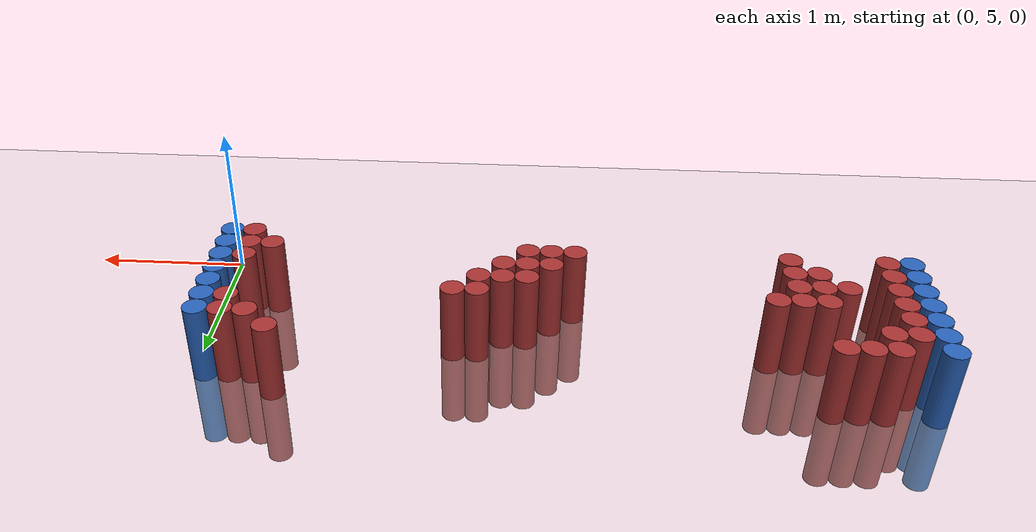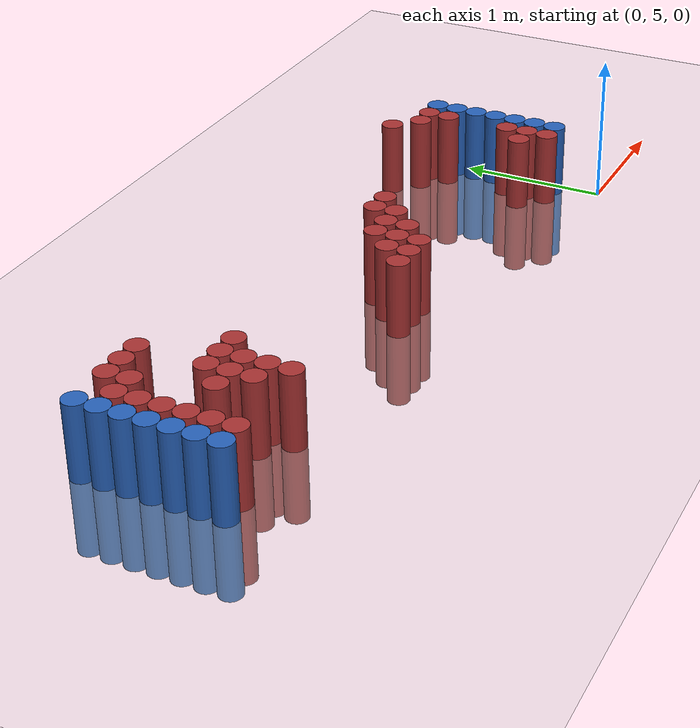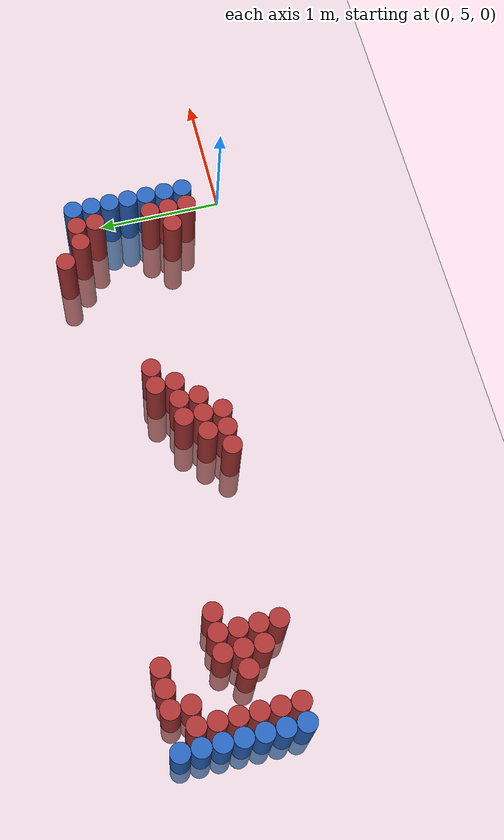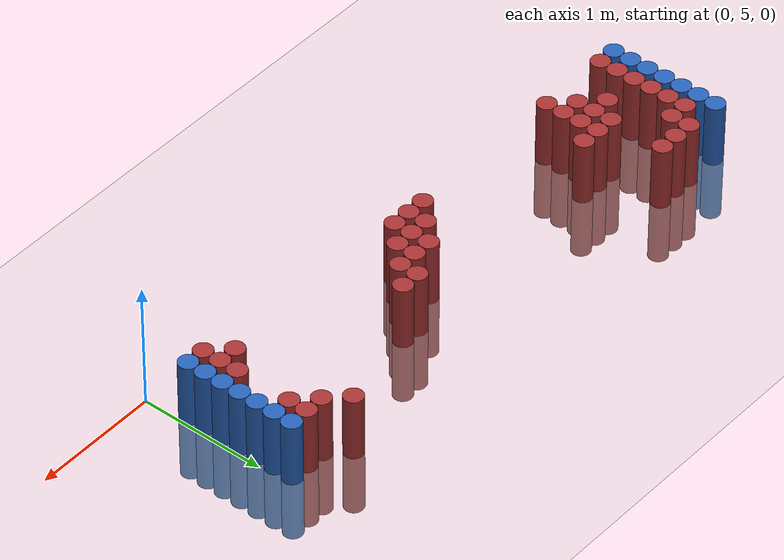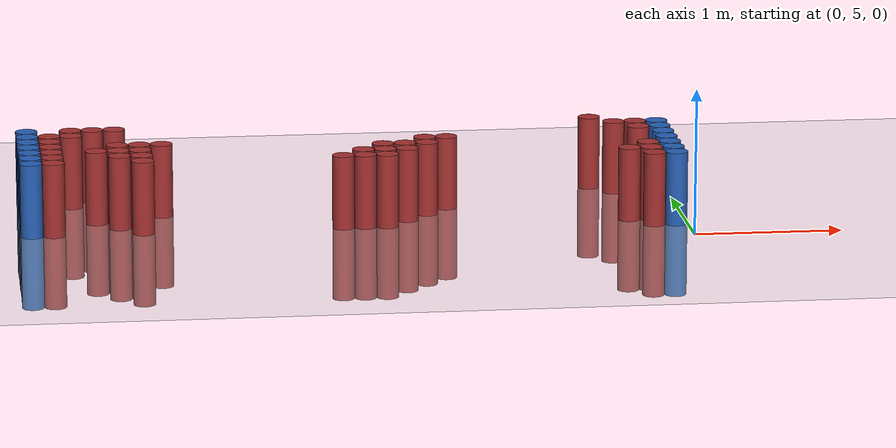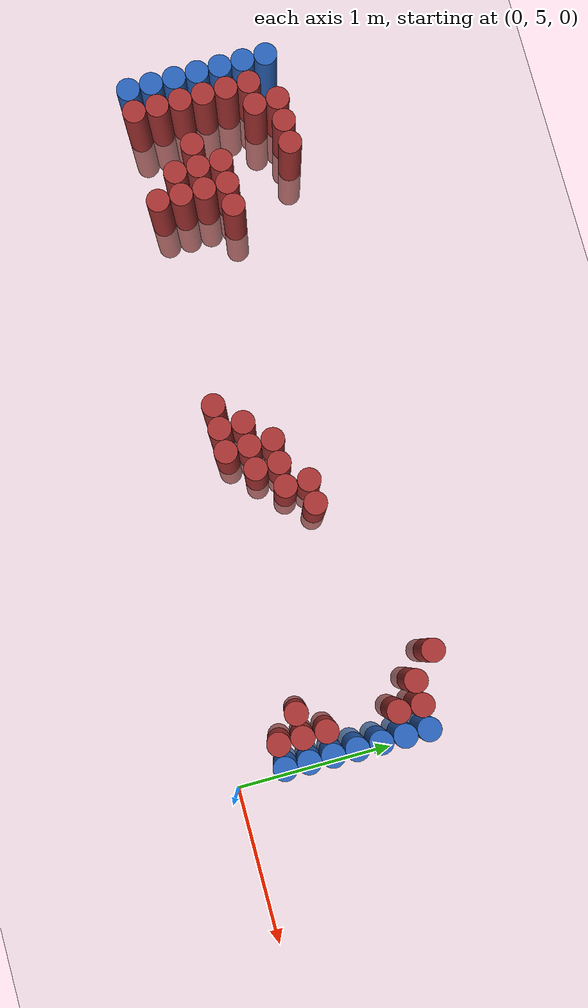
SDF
<sdf version="1.6">
 <world name="default">
  <model name="ground_plane">
   <static>1</static>
   <link name="link">
    <collision name="collision">
     <geometry><plane><normal>0 0 1</normal><size>100 100</size></plane></geometry>
     <surface><friction><ode><mu>100</mu><mu2>50</mu2></ode></friction></surface>
    </collision>
    <visual name="visual">
     <cast_shadows>0</cast_shadows>
     <geometry><plane><normal>0 0 1</normal><size>100 100</size></plane></geometry>
     <material>
      <script><uri>file://media/materials/scripts/gazebo.material</uri><name>Gazebo/Grey</name></script>
     </material>
    </visual>
   </link>
  </model>
  <model name="unit_cylinder_98">
   <static>1</static>
   <pose>-4.425000 5.475000 0.000000 0.000000 0.000000 0.000000</pose>
   <link name="link">
    <inertial>
     <mass>1</mass>
     <inertia><ixx>0.145833</ixx><ixy>0</ixy><ixz>0</ixz><iyy>0.145833</iyy><iyz>0</iyz><izz>0.125</izz></inertia>
    </inertial>
    <collision name="collision">
     <geometry><cylinder><radius>0.075000</radius><length>1</length></cylinder></geometry>
    </collision>
    <visual name="visual">
     <geometry><cylinder><radius>0.075000</radius><length>1</length></cylinder></geometry>
     <material>
      <ambient>0.152000 0.379000 0.720000 1</ambient>
      <diffuse>0.152000 0.379000 0.720000 1</diffuse>
     </material>
     <material>
      <script><name>Gazebo/Grey</name><uri>file://media/materials/scripts/gazebo.material</uri></script>
     </material>
    </visual>
   </link>
  </model>
  <model name="unit_cylinder_99">
   <static>1</static>
   <pose>-4.425000 5.625000 0.000000 0.000000 0.000000 0.000000</pose>
   <link name="link">
    <inertial>
     <mass>1</mass>
     <inertia><ixx>0.145833</ixx><ixy>0</ixy><ixz>0</ixz><iyy>0.145833</iyy><iyz>0</iyz><izz>0.125</izz></inertia>
    </inertial>
    <collision name="collision">
     <geometry><cylinder><radius>0.075000</radius><length>1</length></cylinder></geometry>
    </collision>
    <visual name="visual">
     <geometry><cylinder><radius>0.075000</radius><length>1</length></cylinder></geometry>
     <material>
      <ambient>0.152000 0.379000 0.720000 1</ambient>
      <diffuse>0.152000 0.379000 0.720000 1</diffuse>
     </material>
     <material>
      <script><name>Gazebo/Grey</name><uri>file://media/materials/scripts/gazebo.material</uri></script>
     </material>
    </visual>
   </link>
  </model>
  <model name="unit_cylinder_100">
   <static>1</static>
   <pose>-4.425000 5.775000 0.000000 0.000000 0.000000 0.000000</pose>
   <link name="link">
    <inertial>
     <mass>1</mass>
     <inertia><ixx>0.145833</ixx><ixy>0</ixy><ixz>0</ixz><iyy>0.145833</iyy><iyz>0</iyz><izz>0.125</izz></inertia>
    </inertial>
    <collision name="collision">
     <geometry><cylinder><radius>0.075000</radius><length>1</length></cylinder></geometry>
    </collision>
    <visual name="visual">
     <geometry><cylinder><radius>0.075000</radius><length>1</length></cylinder></geometry>
     <material>
      <ambient>0.152000 0.379000 0.720000 1</ambient>
      <diffuse>0.152000 0.379000 0.720000 1</diffuse>
     </material>
     <material>
      <script><name>Gazebo/Grey</name><uri>file://media/materials/scripts/gazebo.material</uri></script>
     </material>
    </visual>
   </link>
  </model>
  <model name="unit_cylinder_101">
   <static>1</static>
   <pose>-4.425000 5.925000 0.000000 0.000000 0.000000 0.000000</pose>
   <link name="link">
    <inertial>
     <mass>1</mass>
     <inertia><ixx>0.145833</ixx><ixy>0</ixy><ixz>0</ixz><iyy>0.145833</iyy><iyz>0</iyz><izz>0.125</izz></inertia>
    </inertial>
    <collision name="collision">
     <geometry><cylinder><radius>0.075000</radius><length>1</length></cylinder></geometry>
    </collision>
    <visual name="visual">
     <geometry><cylinder><radius>0.075000</radius><length>1</length></cylinder></geometry>
     <material>
      <ambient>0.152000 0.379000 0.720000 1</ambient>
      <diffuse>0.152000 0.379000 0.720000 1</diffuse>
     </material>
     <material>
      <script><name>Gazebo/Grey</name><uri>file://media/materials/scripts/gazebo.material</uri></script>
     </material>
    </visual>
   </link>
  </model>
  <model name="unit_cylinder_102">
   <static>1</static>
   <pose>-4.425000 6.075000 0.000000 0.000000 0.000000 0.000000</pose>
   <link name="link">
    <inertial>
     <mass>1</mass>
     <inertia><ixx>0.145833</ixx><ixy>0</ixy><ixz>0</ixz><iyy>0.145833</iyy><iyz>0</iyz><izz>0.125</izz></inertia>
    </inertial>
    <collision name="collision">
     <geometry><cylinder><radius>0.075000</radius><length>1</length></cylinder></geometry>
    </collision>
    <visual name="visual">
     <geometry><cylinder><radius>0.075000</radius><length>1</length></cylinder></geometry>
     <material>
      <ambient>0.152000 0.379000 0.720000 1</ambient>
      <diffuse>0.152000 0.379000 0.720000 1</diffuse>
     </material>
     <material>
      <script><name>Gazebo/Grey</name><uri>file://media/materials/scripts/gazebo.material</uri></script>
     </material>
    </visual>
   </link>
  </model>
  <model name="unit_cylinder_103">
   <static>1</static>
   <pose>-4.425000 6.225000 0.000000 0.000000 0.000000 0.000000</pose>
   <link name="link">
    <inertial>
     <mass>1</mass>
     <inertia><ixx>0.145833</ixx><ixy>0</ixy><ixz>0</ixz><iyy>0.145833</iyy><iyz>0</iyz><izz>0.125</izz></inertia>
    </inertial>
    <collision name="collision">
     <geometry><cylinder><radius>0.075000</radius><length>1</length></cylinder></geometry>
    </collision>
    <visual name="visual">
     <geometry><cylinder><radius>0.075000</radius><length>1</length></cylinder></geometry>
     <material>
      <ambient>0.152000 0.379000 0.720000 1</ambient>
      <diffuse>0.152000 0.379000 0.720000 1</diffuse>
     </material>
     <material>
      <script><name>Gazebo/Grey</name><uri>file://media/materials/scripts/gazebo.material</uri></script>
     </material>
    </visual>
   </link>
  </model>
  <model name="unit_cylinder_104">
   <static>1</static>
   <pose>-4.425000 6.375000 0.000000 0.000000 0.000000 0.000000</pose>
   <link name="link">
    <inertial>
     <mass>1</mass>
     <inertia><ixx>0.145833</ixx><ixy>0</ixy><ixz>0</ixz><iyy>0.145833</iyy><iyz>0</iyz><izz>0.125</izz></inertia>
    </inertial>
    <collision name="collision">
     <geometry><cylinder><radius>0.075000</radius><length>1</length></cylinder></geometry>
    </collision>
    <visual name="visual">
     <geometry><cylinder><radius>0.075000</radius><length>1</length></cylinder></geometry>
     <material>
      <ambient>0.152000 0.379000 0.720000 1</ambient>
      <diffuse>0.152000 0.379000 0.720000 1</diffuse>
     </material>
     <material>
      <script><name>Gazebo/Grey</name><uri>file://media/materials/scripts/gazebo.material</uri></script>
     </material>
    </visual>
   </link>
  </model>
  <model name="unit_cylinder_128">
   <static>1</static>
   <pose>-4.275000 5.475000 0.000000 0.000000 0.000000 0.000000</pose>
   <link name="link">
    <inertial>
     <mass>1</mass>
     <inertia><ixx>0.145833</ixx><ixy>0</ixy><ixz>0</ixz><iyy>0.145833</iyy><iyz>0</iyz><izz>0.125</izz></inertia>
    </inertial>
    <collision name="collision">
     <geometry><cylinder><radius>0.075000</radius><length>1</length></cylinder></geometry>
    </collision>
    <visual name="visual">
     <geometry><cylinder><radius>0.075000</radius><length>1</length></cylinder></geometry>
     <material>
      <ambient>0.648000 0.192000 0.192000 1</ambient>
      <diffuse>0.648000 0.192000 0.192000 1</diffuse>
     </material>
     <material>
      <script><name>Gazebo/Grey</name><uri>file://media/materials/scripts/gazebo.material</uri></script>
     </material>
    </visual>
   </link>
  </model>
  <model name="unit_cylinder_129">
   <static>1</static>
   <pose>-4.275000 5.625000 0.000000 0.000000 0.000000 0.000000</pose>
   <link name="link">
    <inertial>
     <mass>1</mass>
     <inertia><ixx>0.145833</ixx><ixy>0</ixy><ixz>0</ixz><iyy>0.145833</iyy><iyz>0</iyz><izz>0.125</izz></inertia>
    </inertial>
    <collision name="collision">
     <geometry><cylinder><radius>0.075000</radius><length>1</length></cylinder></geometry>
    </collision>
    <visual name="visual">
     <geometry><cylinder><radius>0.075000</radius><length>1</length></cylinder></geometry>
     <material>
      <ambient>0.648000 0.192000 0.192000 1</ambient>
      <diffuse>0.648000 0.192000 0.192000 1</diffuse>
     </material>
     <material>
      <script><name>Gazebo/Grey</name><uri>file://media/materials/scripts/gazebo.material</uri></script>
     </material>
    </visual>
   </link>
  </model>
  <model name="unit_cylinder_130">
   <static>1</static>
   <pose>-4.275000 5.775000 0.000000 0.000000 0.000000 0.000000</pose>
   <link name="link">
    <inertial>
     <mass>1</mass>
     <inertia><ixx>0.145833</ixx><ixy>0</ixy><ixz>0</ixz><iyy>0.145833</iyy><iyz>0</iyz><izz>0.125</izz></inertia>
    </inertial>
    <collision name="collision">
     <geometry><cylinder><radius>0.075000</radius><length>1</length></cylinder></geometry>
    </collision>
    <visual name="visual">
     <geometry><cylinder><radius>0.075000</radius><length>1</length></cylinder></geometry>
     <material>
      <ambient>0.648000 0.192000 0.192000 1</ambient>
      <diffuse>0.648000 0.192000 0.192000 1</diffuse>
     </material>
     <material>
      <script><name>Gazebo/Grey</name><uri>file://media/materials/scripts/gazebo.material</uri></script>
     </material>
    </visual>
   </link>
  </model>
  <model name="unit_cylinder_131">
   <static>1</static>
   <pose>-4.275000 5.925000 0.000000 0.000000 0.000000 0.000000</pose>
   <link name="link">
    <inertial>
     <mass>1</mass>
     <inertia><ixx>0.145833</ixx><ixy>0</ixy><ixz>0</ixz><iyy>0.145833</iyy><iyz>0</iyz><izz>0.125</izz></inertia>
    </inertial>
    <collision name="collision">
     <geometry><cylinder><radius>0.075000</radius><length>1</length></cylinder></geometry>
    </collision>
    <visual name="visual">
     <geometry><cylinder><radius>0.075000</radius><length>1</length></cylinder></geometry>
     <material>
      <ambient>0.648000 0.192000 0.192000 1</ambient>
      <diffuse>0.648000 0.192000 0.192000 1</diffuse>
     </material>
     <material>
      <script><name>Gazebo/Grey</name><uri>file://media/materials/scripts/gazebo.material</uri></script>
     </material>
    </visual>
   </link>
  </model>
  <model name="unit_cylinder_132">
   <static>1</static>
   <pose>-4.275000 6.075000 0.000000 0.000000 0.000000 0.000000</pose>
   <link name="link">
    <inertial>
     <mass>1</mass>
     <inertia><ixx>0.145833</ixx><ixy>0</ixy><ixz>0</ixz><iyy>0.145833</iyy><iyz>0</iyz><izz>0.125</izz></inertia>
    </inertial>
    <collision name="collision">
     <geometry><cylinder><radius>0.075000</radius><length>1</length></cylinder></geometry>
    </collision>
    <visual name="visual">
     <geometry><cylinder><radius>0.075000</radius><length>1</length></cylinder></geometry>
     <material>
      <ambient>0.648000 0.192000 0.192000 1</ambient>
      <diffuse>0.648000 0.192000 0.192000 1</diffuse>
     </material>
     <material>
      <script><name>Gazebo/Grey</name><uri>file://media/materials/scripts/gazebo.material</uri></script>
     </material>
    </visual>
   </link>
  </model>
  <model name="unit_cylinder_133">
   <static>1</static>
   <pose>-4.275000 6.225000 0.000000 0.000000 0.000000 0.000000</pose>
   <link name="link">
    <inertial>
     <mass>1</mass>
     <inertia><ixx>0.145833</ixx><ixy>0</ixy><ixz>0</ixz><iyy>0.145833</iyy><iyz>0</iyz><izz>0.125</izz></inertia>
    </inertial>
    <collision name="collision">
     <geometry><cylinder><radius>0.075000</radius><length>1</length></cylinder></geometry>
    </collision>
    <visual name="visual">
     <geometry><cylinder><radius>0.075000</radius><length>1</length></cylinder></geometry>
     <material>
      <ambient>0.648000 0.192000 0.192000 1</ambient>
      <diffuse>0.648000 0.192000 0.192000 1</diffuse>
     </material>
     <material>
      <script><name>Gazebo/Grey</name><uri>file://media/materials/scripts/gazebo.material</uri></script>
     </material>
    </visual>
   </link>
  </model>
  <model name="unit_cylinder_144">
   <static>1</static>
   <pose>-4.125000 6.225000 0.000000 0.000000 0.000000 0.000000</pose>
   <link name="link">
    <inertial>
     <mass>1</mass>
     <inertia><ixx>0.145833</ixx><ixy>0</ixy><ixz>0</ixz><iyy>0.145833</iyy><iyz>0</iyz><izz>0.125</izz></inertia>
    </inertial>
    <collision name="collision">
     <geometry><cylinder><radius>0.075000</radius><length>1</length></cylinder></geometry>
    </collision>
    <visual name="visual">
     <geometry><cylinder><radius>0.075000</radius><length>1</length></cylinder></geometry>
     <material>
      <ambient>0.648000 0.192000 0.192000 1</ambient>
      <diffuse>0.648000 0.192000 0.192000 1</diffuse>
     </material>
     <material>
      <script><name>Gazebo/Grey</name><uri>file://media/materials/scripts/gazebo.material</uri></script>
     </material>
    </visual>
   </link>
  </model>
  <model name="unit_cylinder_145">
   <static>1</static>
   <pose>-4.125000 6.375000 0.000000 0.000000 0.000000 0.000000</pose>
   <link name="link">
    <inertial>
     <mass>1</mass>
     <inertia><ixx>0.145833</ixx><ixy>0</ixy><ixz>0</ixz><iyy>0.145833</iyy><iyz>0</iyz><izz>0.125</izz></inertia>
    </inertial>
    <collision name="collision">
     <geometry><cylinder><radius>0.075000</radius><length>1</length></cylinder></geometry>
    </collision>
    <visual name="visual">
     <geometry><cylinder><radius>0.075000</radius><length>1</length></cylinder></geometry>
     <material>
      <ambient>0.648000 0.192000 0.192000 1</ambient>
      <diffuse>0.648000 0.192000 0.192000 1</diffuse>
     </material>
     <material>
      <script><name>Gazebo/Grey</name><uri>file://media/materials/scripts/gazebo.material</uri></script>
     </material>
    </visual>
   </link>
  </model>
  <model name="unit_cylinder_151">
   <static>1</static>
   <pose>-3.975000 5.775000 0.000000 0.000000 0.000000 0.000000</pose>
   <link name="link">
    <inertial>
     <mass>1</mass>
     <inertia><ixx>0.145833</ixx><ixy>0</ixy><ixz>0</ixz><iyy>0.145833</iyy><iyz>0</iyz><izz>0.125</izz></inertia>
    </inertial>
    <collision name="collision">
     <geometry><cylinder><radius>0.075000</radius><length>1</length></cylinder></geometry>
    </collision>
    <visual name="visual">
     <geometry><cylinder><radius>0.075000</radius><length>1</length></cylinder></geometry>
     <material>
      <ambient>0.648000 0.192000 0.192000 1</ambient>
      <diffuse>0.648000 0.192000 0.192000 1</diffuse>
     </material>
     <material>
      <script><name>Gazebo/Grey</name><uri>file://media/materials/scripts/gazebo.material</uri></script>
     </material>
    </visual>
   </link>
  </model>
  <model name="unit_cylinder_152">
   <static>1</static>
   <pose>-3.975000 6.375000 0.000000 0.000000 0.000000 0.000000</pose>
   <link name="link">
    <inertial>
     <mass>1</mass>
     <inertia><ixx>0.145833</ixx><ixy>0</ixy><ixz>0</ixz><iyy>0.145833</iyy><iyz>0</iyz><izz>0.125</izz></inertia>
    </inertial>
    <collision name="collision">
     <geometry><cylinder><radius>0.075000</radius><length>1</length></cylinder></geometry>
    </collision>
    <visual name="visual">
     <geometry><cylinder><radius>0.075000</radius><length>1</length></cylinder></geometry>
     <material>
      <ambient>0.648000 0.192000 0.192000 1</ambient>
      <diffuse>0.648000 0.192000 0.192000 1</diffuse>
     </material>
     <material>
      <script><name>Gazebo/Grey</name><uri>file://media/materials/scripts/gazebo.material</uri></script>
     </material>
    </visual>
   </link>
  </model>
  <model name="unit_cylinder_156">
   <static>1</static>
   <pose>-3.825000 5.625000 0.000000 0.000000 0.000000 0.000000</pose>
   <link name="link">
    <inertial>
     <mass>1</mass>
     <inertia><ixx>0.145833</ixx><ixy>0</ixy><ixz>0</ixz><iyy>0.145833</iyy><iyz>0</iyz><izz>0.125</izz></inertia>
    </inertial>
    <collision name="collision">
     <geometry><cylinder><radius>0.075000</radius><length>1</length></cylinder></geometry>
    </collision>
    <visual name="visual">
     <geometry><cylinder><radius>0.075000</radius><length>1</length></cylinder></geometry>
     <material>
      <ambient>0.648000 0.192000 0.192000 1</ambient>
      <diffuse>0.648000 0.192000 0.192000 1</diffuse>
     </material>
     <material>
      <script><name>Gazebo/Grey</name><uri>file://media/materials/scripts/gazebo.material</uri></script>
     </material>
    </visual>
   </link>
  </model>
  <model name="unit_cylinder_157">
   <static>1</static>
   <pose>-3.825000 5.775000 0.000000 0.000000 0.000000 0.000000</pose>
   <link name="link">
    <inertial>
     <mass>1</mass>
     <inertia><ixx>0.145833</ixx><ixy>0</ixy><ixz>0</ixz><iyy>0.145833</iyy><iyz>0</iyz><izz>0.125</izz></inertia>
    </inertial>
    <collision name="collision">
     <geometry><cylinder><radius>0.075000</radius><length>1</length></cylinder></geometry>
    </collision>
    <visual name="visual">
     <geometry><cylinder><radius>0.075000</radius><length>1</length></cylinder></geometry>
     <material>
      <ambient>0.648000 0.192000 0.192000 1</ambient>
      <diffuse>0.648000 0.192000 0.192000 1</diffuse>
     </material>
     <material>
      <script><name>Gazebo/Grey</name><uri>file://media/materials/scripts/gazebo.material</uri></script>
     </material>
    </visual>
   </link>
  </model>
  <model name="unit_cylinder_158">
   <static>1</static>
   <pose>-3.825000 5.925000 0.000000 0.000000 0.000000 0.000000</pose>
   <link name="link">
    <inertial>
     <mass>1</mass>
     <inertia><ixx>0.145833</ixx><ixy>0</ixy><ixz>0</ixz><iyy>0.145833</iyy><iyz>0</iyz><izz>0.125</izz></inertia>
    </inertial>
    <collision name="collision">
     <geometry><cylinder><radius>0.075000</radius><length>1</length></cylinder></geometry>
    </collision>
    <visual name="visual">
     <geometry><cylinder><radius>0.075000</radius><length>1</length></cylinder></geometry>
     <material>
      <ambient>0.648000 0.192000 0.192000 1</ambient>
      <diffuse>0.648000 0.192000 0.192000 1</diffuse>
     </material>
     <material>
      <script><name>Gazebo/Grey</name><uri>file://media/materials/scripts/gazebo.material</uri></script>
     </material>
    </visual>
   </link>
  </model>
  <model name="unit_cylinder_159">
   <static>1</static>
   <pose>-3.825000 6.375000 0.000000 0.000000 0.000000 0.000000</pose>
   <link name="link">
    <inertial>
     <mass>1</mass>
     <inertia><ixx>0.145833</ixx><ixy>0</ixy><ixz>0</ixz><iyy>0.145833</iyy><iyz>0</iyz><izz>0.125</izz></inertia>
    </inertial>
    <collision name="collision">
     <geometry><cylinder><radius>0.075000</radius><length>1</length></cylinder></geometry>
    </collision>
    <visual name="visual">
     <geometry><cylinder><radius>0.075000</radius><length>1</length></cylinder></geometry>
     <material>
      <ambient>0.648000 0.192000 0.192000 1</ambient>
      <diffuse>0.648000 0.192000 0.192000 1</diffuse>
     </material>
     <material>
      <script><name>Gazebo/Grey</name><uri>file://media/materials/scripts/gazebo.material</uri></script>
     </material>
    </visual>
   </link>
  </model>
  <model name="unit_cylinder_164">
   <static>1</static>
   <pose>-3.675000 5.475000 0.000000 0.000000 0.000000 0.000000</pose>
   <link name="link">
    <inertial>
     <mass>1</mass>
     <inertia><ixx>0.145833</ixx><ixy>0</ixy><ixz>0</ixz><iyy>0.145833</iyy><iyz>0</iyz><izz>0.125</izz></inertia>
    </inertial>
    <collision name="collision">
     <geometry><cylinder><radius>0.075000</radius><length>1</length></cylinder></geometry>
    </collision>
    <visual name="visual">
     <geometry><cylinder><radius>0.075000</radius><length>1</length></cylinder></geometry>
     <material>
      <ambient>0.648000 0.192000 0.192000 1</ambient>
      <diffuse>0.648000 0.192000 0.192000 1</diffuse>
     </material>
     <material>
      <script><name>Gazebo/Grey</name><uri>file://media/materials/scripts/gazebo.material</uri></script>
     </material>
    </visual>
   </link>
  </model>
  <model name="unit_cylinder_165">
   <static>1</static>
   <pose>-3.675000 5.625000 0.000000 0.000000 0.000000 0.000000</pose>
   <link name="link">
    <inertial>
     <mass>1</mass>
     <inertia><ixx>0.145833</ixx><ixy>0</ixy><ixz>0</ixz><iyy>0.145833</iyy><iyz>0</iyz><izz>0.125</izz></inertia>
    </inertial>
    <collision name="collision">
     <geometry><cylinder><radius>0.075000</radius><length>1</length></cylinder></geometry>
    </collision>
    <visual name="visual">
     <geometry><cylinder><radius>0.075000</radius><length>1</length></cylinder></geometry>
     <material>
      <ambient>0.648000 0.192000 0.192000 1</ambient>
      <diffuse>0.648000 0.192000 0.192000 1</diffuse>
     </material>
     <material>
      <script><name>Gazebo/Grey</name><uri>file://media/materials/scripts/gazebo.material</uri></script>
     </material>
    </visual>
   </link>
  </model>
  <model name="unit_cylinder_166">
   <static>1</static>
   <pose>-3.675000 5.775000 0.000000 0.000000 0.000000 0.000000</pose>
   <link name="link">
    <inertial>
     <mass>1</mass>
     <inertia><ixx>0.145833</ixx><ixy>0</ixy><ixz>0</ixz><iyy>0.145833</iyy><iyz>0</iyz><izz>0.125</izz></inertia>
    </inertial>
    <collision name="collision">
     <geometry><cylinder><radius>0.075000</radius><length>1</length></cylinder></geometry>
    </collision>
    <visual name="visual">
     <geometry><cylinder><radius>0.075000</radius><length>1</length></cylinder></geometry>
     <material>
      <ambient>0.648000 0.192000 0.192000 1</ambient>
      <diffuse>0.648000 0.192000 0.192000 1</diffuse>
     </material>
     <material>
      <script><name>Gazebo/Grey</name><uri>file://media/materials/scripts/gazebo.material</uri></script>
     </material>
    </visual>
   </link>
  </model>
  <model name="unit_cylinder_167">
   <static>1</static>
   <pose>-3.675000 5.925000 0.000000 0.000000 0.000000 0.000000</pose>
   <link name="link">
    <inertial>
     <mass>1</mass>
     <inertia><ixx>0.145833</ixx><ixy>0</ixy><ixz>0</ixz><iyy>0.145833</iyy><iyz>0</iyz><izz>0.125</izz></inertia>
    </inertial>
    <collision name="collision">
     <geometry><cylinder><radius>0.075000</radius><length>1</length></cylinder></geometry>
    </collision>
    <visual name="visual">
     <geometry><cylinder><radius>0.075000</radius><length>1</length></cylinder></geometry>
     <material>
      <ambient>0.648000 0.192000 0.192000 1</ambient>
      <diffuse>0.648000 0.192000 0.192000 1</diffuse>
     </material>
     <material>
      <script><name>Gazebo/Grey</name><uri>file://media/materials/scripts/gazebo.material</uri></script>
     </material>
    </visual>
   </link>
  </model>
  <model name="unit_cylinder_171">
   <static>1</static>
   <pose>-3.525000 5.925000 0.000000 0.000000 0.000000 0.000000</pose>
   <link name="link">
    <inertial>
     <mass>1</mass>
     <inertia><ixx>0.145833</ixx><ixy>0</ixy><ixz>0</ixz><iyy>0.145833</iyy><iyz>0</iyz><izz>0.125</izz></inertia>
    </inertial>
    <collision name="collision">
     <geometry><cylinder><radius>0.075000</radius><length>1</length></cylinder></geometry>
    </collision>
    <visual name="visual">
     <geometry><cylinder><radius>0.075000</radius><length>1</length></cylinder></geometry>
     <material>
      <ambient>0.648000 0.192000 0.192000 1</ambient>
      <diffuse>0.648000 0.192000 0.192000 1</diffuse>
     </material>
     <material>
      <script><name>Gazebo/Grey</name><uri>file://media/materials/scripts/gazebo.material</uri></script>
     </material>
    </visual>
   </link>
  </model>
  <model name="unit_cylinder_199">
   <static>1</static>
   <pose>-2.325000 5.475000 0.000000 0.000000 0.000000 0.000000</pose>
   <link name="link">
    <inertial>
     <mass>1</mass>
     <inertia><ixx>0.145833</ixx><ixy>0</ixy><ixz>0</ixz><iyy>0.145833</iyy><iyz>0</iyz><izz>0.125</izz></inertia>
    </inertial>
    <collision name="collision">
     <geometry><cylinder><radius>0.075000</radius><length>1</length></cylinder></geometry>
    </collision>
    <visual name="visual">
     <geometry><cylinder><radius>0.075000</radius><length>1</length></cylinder></geometry>
     <material>
      <ambient>0.648000 0.192000 0.192000 1</ambient>
      <diffuse>0.648000 0.192000 0.192000 1</diffuse>
     </material>
     <material>
      <script><name>Gazebo/Grey</name><uri>file://media/materials/scripts/gazebo.material</uri></script>
     </material>
    </visual>
   </link>
  </model>
  <model name="unit_cylinder_204">
   <static>1</static>
   <pose>-2.175000 5.475000 0.000000 0.000000 0.000000 0.000000</pose>
   <link name="link">
    <inertial>
     <mass>1</mass>
     <inertia><ixx>0.145833</ixx><ixy>0</ixy><ixz>0</ixz><iyy>0.145833</iyy><iyz>0</iyz><izz>0.125</izz></inertia>
    </inertial>
    <collision name="collision">
     <geometry><cylinder><radius>0.075000</radius><length>1</length></cylinder></geometry>
    </collision>
    <visual name="visual">
     <geometry><cylinder><radius>0.075000</radius><length>1</length></cylinder></geometry>
     <material>
      <ambient>0.648000 0.192000 0.192000 1</ambient>
      <diffuse>0.648000 0.192000 0.192000 1</diffuse>
     </material>
     <material>
      <script><name>Gazebo/Grey</name><uri>file://media/materials/scripts/gazebo.material</uri></script>
     </material>
    </visual>
   </link>
  </model>
  <model name="unit_cylinder_205">
   <static>1</static>
   <pose>-2.175000 5.625000 0.000000 0.000000 0.000000 0.000000</pose>
   <link name="link">
    <inertial>
     <mass>1</mass>
     <inertia><ixx>0.145833</ixx><ixy>0</ixy><ixz>0</ixz><iyy>0.145833</iyy><iyz>0</iyz><izz>0.125</izz></inertia>
    </inertial>
    <collision name="collision">
     <geometry><cylinder><radius>0.075000</radius><length>1</length></cylinder></geometry>
    </collision>
    <visual name="visual">
     <geometry><cylinder><radius>0.075000</radius><length>1</length></cylinder></geometry>
     <material>
      <ambient>0.648000 0.192000 0.192000 1</ambient>
      <diffuse>0.648000 0.192000 0.192000 1</diffuse>
     </material>
     <material>
      <script><name>Gazebo/Grey</name><uri>file://media/materials/scripts/gazebo.material</uri></script>
     </material>
    </visual>
   </link>
  </model>
  <model name="unit_cylinder_206">
   <static>1</static>
   <pose>-2.025000 5.475000 0.000000 0.000000 0.000000 0.000000</pose>
   <link name="link">
    <inertial>
     <mass>1</mass>
     <inertia><ixx>0.145833</ixx><ixy>0</ixy><ixz>0</ixz><iyy>0.145833</iyy><iyz>0</iyz><izz>0.125</izz></inertia>
    </inertial>
    <collision name="collision">
     <geometry><cylinder><radius>0.075000</radius><length>1</length></cylinder></geometry>
    </collision>
    <visual name="visual">
     <geometry><cylinder><radius>0.075000</radius><length>1</length></cylinder></geometry>
     <material>
      <ambient>0.648000 0.192000 0.192000 1</ambient>
      <diffuse>0.648000 0.192000 0.192000 1</diffuse>
     </material>
     <material>
      <script><name>Gazebo/Grey</name><uri>file://media/materials/scripts/gazebo.material</uri></script>
     </material>
    </visual>
   </link>
  </model>
  <model name="unit_cylinder_207">
   <static>1</static>
   <pose>-2.025000 5.625000 0.000000 0.000000 0.000000 0.000000</pose>
   <link name="link">
    <inertial>
     <mass>1</mass>
     <inertia><ixx>0.145833</ixx><ixy>0</ixy><ixz>0</ixz><iyy>0.145833</iyy><iyz>0</iyz><izz>0.125</izz></inertia>
    </inertial>
    <collision name="collision">
     <geometry><cylinder><radius>0.075000</radius><length>1</length></cylinder></geometry>
    </collision>
    <visual name="visual">
     <geometry><cylinder><radius>0.075000</radius><length>1</length></cylinder></geometry>
     <material>
      <ambient>0.648000 0.192000 0.192000 1</ambient>
      <diffuse>0.648000 0.192000 0.192000 1</diffuse>
     </material>
     <material>
      <script><name>Gazebo/Grey</name><uri>file://media/materials/scripts/gazebo.material</uri></script>
     </material>
    </visual>
   </link>
  </model>
  <model name="unit_cylinder_208">
   <static>1</static>
   <pose>-2.025000 5.775000 0.000000 0.000000 0.000000 0.000000</pose>
   <link name="link">
    <inertial>
     <mass>1</mass>
     <inertia><ixx>0.145833</ixx><ixy>0</ixy><ixz>0</ixz><iyy>0.145833</iyy><iyz>0</iyz><izz>0.125</izz></inertia>
    </inertial>
    <collision name="collision">
     <geometry><cylinder><radius>0.075000</radius><length>1</length></cylinder></geometry>
    </collision>
    <visual name="visual">
     <geometry><cylinder><radius>0.075000</radius><length>1</length></cylinder></geometry>
     <material>
      <ambient>0.648000 0.192000 0.192000 1</ambient>
      <diffuse>0.648000 0.192000 0.192000 1</diffuse>
     </material>
     <material>
      <script><name>Gazebo/Grey</name><uri>file://media/materials/scripts/gazebo.material</uri></script>
     </material>
    </visual>
   </link>
  </model>
  <model name="unit_cylinder_209">
   <static>1</static>
   <pose>-1.875000 5.625000 0.000000 0.000000 0.000000 0.000000</pose>
   <link name="link">
    <inertial>
     <mass>1</mass>
     <inertia><ixx>0.145833</ixx><ixy>0</ixy><ixz>0</ixz><iyy>0.145833</iyy><iyz>0</iyz><izz>0.125</izz></inertia>
    </inertial>
    <collision name="collision">
     <geometry><cylinder><radius>0.075000</radius><length>1</length></cylinder></geometry>
    </collision>
    <visual name="visual">
     <geometry><cylinder><radius>0.075000</radius><length>1</length></cylinder></geometry>
     <material>
      <ambient>0.648000 0.192000 0.192000 1</ambient>
      <diffuse>0.648000 0.192000 0.192000 1</diffuse>
     </material>
     <material>
      <script><name>Gazebo/Grey</name><uri>file://media/materials/scripts/gazebo.material</uri></script>
     </material>
    </visual>
   </link>
  </model>
  <model name="unit_cylinder_210">
   <static>1</static>
   <pose>-1.875000 5.775000 0.000000 0.000000 0.000000 0.000000</pose>
   <link name="link">
    <inertial>
     <mass>1</mass>
     <inertia><ixx>0.145833</ixx><ixy>0</ixy><ixz>0</ixz><iyy>0.145833</iyy><iyz>0</iyz><izz>0.125</izz></inertia>
    </inertial>
    <collision name="collision">
     <geometry><cylinder><radius>0.075000</radius><length>1</length></cylinder></geometry>
    </collision>
    <visual name="visual">
     <geometry><cylinder><radius>0.075000</radius><length>1</length></cylinder></geometry>
     <material>
      <ambient>0.648000 0.192000 0.192000 1</ambient>
      <diffuse>0.648000 0.192000 0.192000 1</diffuse>
     </material>
     <material>
      <script><name>Gazebo/Grey</name><uri>file://media/materials/scripts/gazebo.material</uri></script>
     </material>
    </visual>
   </link>
  </model>
  <model name="unit_cylinder_214">
   <static>1</static>
   <pose>-1.725000 5.775000 0.000000 0.000000 0.000000 0.000000</pose>
   <link name="link">
    <inertial>
     <mass>1</mass>
     <inertia><ixx>0.145833</ixx><ixy>0</ixy><ixz>0</ixz><iyy>0.145833</iyy><iyz>0</iyz><izz>0.125</izz></inertia>
    </inertial>
    <collision name="collision">
     <geometry><cylinder><radius>0.075000</radius><length>1</length></cylinder></geometry>
    </collision>
    <visual name="visual">
     <geometry><cylinder><radius>0.075000</radius><length>1</length></cylinder></geometry>
     <material>
      <ambient>0.648000 0.192000 0.192000 1</ambient>
      <diffuse>0.648000 0.192000 0.192000 1</diffuse>
     </material>
     <material>
      <script><name>Gazebo/Grey</name><uri>file://media/materials/scripts/gazebo.material</uri></script>
     </material>
    </visual>
   </link>
  </model>
  <model name="unit_cylinder_215">
   <static>1</static>
   <pose>-1.725000 5.925000 0.000000 0.000000 0.000000 0.000000</pose>
   <link name="link">
    <inertial>
     <mass>1</mass>
     <inertia><ixx>0.145833</ixx><ixy>0</ixy><ixz>0</ixz><iyy>0.145833</iyy><iyz>0</iyz><izz>0.125</izz></inertia>
    </inertial>
    <collision name="collision">
     <geometry><cylinder><radius>0.075000</radius><length>1</length></cylinder></geometry>
    </collision>
    <visual name="visual">
     <geometry><cylinder><radius>0.075000</radius><length>1</length></cylinder></geometry>
     <material>
      <ambient>0.648000 0.192000 0.192000 1</ambient>
      <diffuse>0.648000 0.192000 0.192000 1</diffuse>
     </material>
     <material>
      <script><name>Gazebo/Grey</name><uri>file://media/materials/scripts/gazebo.material</uri></script>
     </material>
    </visual>
   </link>
  </model>
  <model name="unit_cylinder_218">
   <static>1</static>
   <pose>-1.575000 5.925000 0.000000 0.000000 0.000000 0.000000</pose>
   <link name="link">
    <inertial>
     <mass>1</mass>
     <inertia><ixx>0.145833</ixx><ixy>0</ixy><ixz>0</ixz><iyy>0.145833</iyy><iyz>0</iyz><izz>0.125</izz></inertia>
    </inertial>
    <collision name="collision">
     <geometry><cylinder><radius>0.075000</radius><length>1</length></cylinder></geometry>
    </collision>
    <visual name="visual">
     <geometry><cylinder><radius>0.075000</radius><length>1</length></cylinder></geometry>
     <material>
      <ambient>0.648000 0.192000 0.192000 1</ambient>
      <diffuse>0.648000 0.192000 0.192000 1</diffuse>
     </material>
     <material>
      <script><name>Gazebo/Grey</name><uri>file://media/materials/scripts/gazebo.material</uri></script>
     </material>
    </visual>
   </link>
  </model>
  <model name="unit_cylinder_244">
   <static>1</static>
   <pose>-0.525000 6.375000 0.000000 0.000000 0.000000 0.000000</pose>
   <link name="link">
    <inertial>
     <mass>1</mass>
     <inertia><ixx>0.145833</ixx><ixy>0</ixy><ixz>0</ixz><iyy>0.145833</iyy><iyz>0</iyz><izz>0.125</izz></inertia>
    </inertial>
    <collision name="collision">
     <geometry><cylinder><radius>0.075000</radius><length>1</length></cylinder></geometry>
    </collision>
    <visual name="visual">
     <geometry><cylinder><radius>0.075000</radius><length>1</length></cylinder></geometry>
     <material>
      <ambient>0.648000 0.192000 0.192000 1</ambient>
      <diffuse>0.648000 0.192000 0.192000 1</diffuse>
     </material>
     <material>
      <script><name>Gazebo/Grey</name><uri>file://media/materials/scripts/gazebo.material</uri></script>
     </material>
    </visual>
   </link>
  </model>
  <model name="unit_cylinder_261">
   <static>1</static>
   <pose>-0.375000 5.475000 0.000000 0.000000 0.000000 0.000000</pose>
   <link name="link">
    <inertial>
     <mass>1</mass>
     <inertia><ixx>0.145833</ixx><ixy>0</ixy><ixz>0</ixz><iyy>0.145833</iyy><iyz>0</iyz><izz>0.125</izz></inertia>
    </inertial>
    <collision name="collision">
     <geometry><cylinder><radius>0.075000</radius><length>1</length></cylinder></geometry>
    </collision>
    <visual name="visual">
     <geometry><cylinder><radius>0.075000</radius><length>1</length></cylinder></geometry>
     <material>
      <ambient>0.648000 0.192000 0.192000 1</ambient>
      <diffuse>0.648000 0.192000 0.192000 1</diffuse>
     </material>
     <material>
      <script><name>Gazebo/Grey</name><uri>file://media/materials/scripts/gazebo.material</uri></script>
     </material>
    </visual>
   </link>
  </model>
  <model name="unit_cylinder_262">
   <static>1</static>
   <pose>-0.375000 6.225000 0.000000 0.000000 0.000000 0.000000</pose>
   <link name="link">
    <inertial>
     <mass>1</mass>
     <inertia><ixx>0.145833</ixx><ixy>0</ixy><ixz>0</ixz><iyy>0.145833</iyy><iyz>0</iyz><izz>0.125</izz></inertia>
    </inertial>
    <collision name="collision">
     <geometry><cylinder><radius>0.075000</radius><length>1</length></cylinder></geometry>
    </collision>
    <visual name="visual">
     <geometry><cylinder><radius>0.075000</radius><length>1</length></cylinder></geometry>
     <material>
      <ambient>0.648000 0.192000 0.192000 1</ambient>
      <diffuse>0.648000 0.192000 0.192000 1</diffuse>
     </material>
     <material>
      <script><name>Gazebo/Grey</name><uri>file://media/materials/scripts/gazebo.material</uri></script>
     </material>
    </visual>
   </link>
  </model>
  <model name="unit_cylinder_271">
   <static>1</static>
   <pose>-0.225000 5.325000 0.000000 0.000000 0.000000 0.000000</pose>
   <link name="link">
    <inertial>
     <mass>1</mass>
     <inertia><ixx>0.145833</ixx><ixy>0</ixy><ixz>0</ixz><iyy>0.145833</iyy><iyz>0</iyz><izz>0.125</izz></inertia>
    </inertial>
    <collision name="collision">
     <geometry><cylinder><radius>0.075000</radius><length>1</length></cylinder></geometry>
    </collision>
    <visual name="visual">
     <geometry><cylinder><radius>0.075000</radius><length>1</length></cylinder></geometry>
     <material>
      <ambient>0.648000 0.192000 0.192000 1</ambient>
      <diffuse>0.648000 0.192000 0.192000 1</diffuse>
     </material>
     <material>
      <script><name>Gazebo/Grey</name><uri>file://media/materials/scripts/gazebo.material</uri></script>
     </material>
    </visual>
   </link>
  </model>
  <model name="unit_cylinder_272">
   <static>1</static>
   <pose>-0.225000 5.475000 0.000000 0.000000 0.000000 0.000000</pose>
   <link name="link">
    <inertial>
     <mass>1</mass>
     <inertia><ixx>0.145833</ixx><ixy>0</ixy><ixz>0</ixz><iyy>0.145833</iyy><iyz>0</iyz><izz>0.125</izz></inertia>
    </inertial>
    <collision name="collision">
     <geometry><cylinder><radius>0.075000</radius><length>1</length></cylinder></geometry>
    </collision>
    <visual name="visual">
     <geometry><cylinder><radius>0.075000</radius><length>1</length></cylinder></geometry>
     <material>
      <ambient>0.648000 0.192000 0.192000 1</ambient>
      <diffuse>0.648000 0.192000 0.192000 1</diffuse>
     </material>
     <material>
      <script><name>Gazebo/Grey</name><uri>file://media/materials/scripts/gazebo.material</uri></script>
     </material>
    </visual>
   </link>
  </model>
  <model name="unit_cylinder_273">
   <static>1</static>
   <pose>-0.225000 5.625000 0.000000 0.000000 0.000000 0.000000</pose>
   <link name="link">
    <inertial>
     <mass>1</mass>
     <inertia><ixx>0.145833</ixx><ixy>0</ixy><ixz>0</ixz><iyy>0.145833</iyy><iyz>0</iyz><izz>0.125</izz></inertia>
    </inertial>
    <collision name="collision">
     <geometry><cylinder><radius>0.075000</radius><length>1</length></cylinder></geometry>
    </collision>
    <visual name="visual">
     <geometry><cylinder><radius>0.075000</radius><length>1</length></cylinder></geometry>
     <material>
      <ambient>0.648000 0.192000 0.192000 1</ambient>
      <diffuse>0.648000 0.192000 0.192000 1</diffuse>
     </material>
     <material>
      <script><name>Gazebo/Grey</name><uri>file://media/materials/scripts/gazebo.material</uri></script>
     </material>
    </visual>
   </link>
  </model>
  <model name="unit_cylinder_274">
   <static>1</static>
   <pose>-0.225000 6.075000 0.000000 0.000000 0.000000 0.000000</pose>
   <link name="link">
    <inertial>
     <mass>1</mass>
     <inertia><ixx>0.145833</ixx><ixy>0</ixy><ixz>0</ixz><iyy>0.145833</iyy><iyz>0</iyz><izz>0.125</izz></inertia>
    </inertial>
    <collision name="collision">
     <geometry><cylinder><radius>0.075000</radius><length>1</length></cylinder></geometry>
    </collision>
    <visual name="visual">
     <geometry><cylinder><radius>0.075000</radius><length>1</length></cylinder></geometry>
     <material>
      <ambient>0.648000 0.192000 0.192000 1</ambient>
      <diffuse>0.648000 0.192000 0.192000 1</diffuse>
     </material>
     <material>
      <script><name>Gazebo/Grey</name><uri>file://media/materials/scripts/gazebo.material</uri></script>
     </material>
    </visual>
   </link>
  </model>
  <model name="unit_cylinder_275">
   <static>1</static>
   <pose>-0.225000 6.225000 0.000000 0.000000 0.000000 0.000000</pose>
   <link name="link">
    <inertial>
     <mass>1</mass>
     <inertia><ixx>0.145833</ixx><ixy>0</ixy><ixz>0</ixz><iyy>0.145833</iyy><iyz>0</iyz><izz>0.125</izz></inertia>
    </inertial>
    <collision name="collision">
     <geometry><cylinder><radius>0.075000</radius><length>1</length></cylinder></geometry>
    </collision>
    <visual name="visual">
     <geometry><cylinder><radius>0.075000</radius><length>1</length></cylinder></geometry>
     <material>
      <ambient>0.648000 0.192000 0.192000 1</ambient>
      <diffuse>0.648000 0.192000 0.192000 1</diffuse>
     </material>
     <material>
      <script><name>Gazebo/Grey</name><uri>file://media/materials/scripts/gazebo.material</uri></script>
     </material>
    </visual>
   </link>
  </model>
  <model name="unit_cylinder_286">
   <static>1</static>
   <pose>-0.075000 5.325000 0.000000 0.000000 0.000000 0.000000</pose>
   <link name="link">
    <inertial>
     <mass>1</mass>
     <inertia><ixx>0.145833</ixx><ixy>0</ixy><ixz>0</ixz><iyy>0.145833</iyy><iyz>0</iyz><izz>0.125</izz></inertia>
    </inertial>
    <collision name="collision">
     <geometry><cylinder><radius>0.075000</radius><length>1</length></cylinder></geometry>
    </collision>
    <visual name="visual">
     <geometry><cylinder><radius>0.075000</radius><length>1</length></cylinder></geometry>
     <material>
      <ambient>0.152000 0.379000 0.720000 1</ambient>
      <diffuse>0.152000 0.379000 0.720000 1</diffuse>
     </material>
     <material>
      <script><name>Gazebo/Grey</name><uri>file://media/materials/scripts/gazebo.material</uri></script>
     </material>
    </visual>
   </link>
  </model>
  <model name="unit_cylinder_287">
   <static>1</static>
   <pose>-0.075000 5.475000 0.000000 0.000000 0.000000 0.000000</pose>
   <link name="link">
    <inertial>
     <mass>1</mass>
     <inertia><ixx>0.145833</ixx><ixy>0</ixy><ixz>0</ixz><iyy>0.145833</iyy><iyz>0</iyz><izz>0.125</izz></inertia>
    </inertial>
    <collision name="collision">
     <geometry><cylinder><radius>0.075000</radius><length>1</length></cylinder></geometry>
    </collision>
    <visual name="visual">
     <geometry><cylinder><radius>0.075000</radius><length>1</length></cylinder></geometry>
     <material>
      <ambient>0.152000 0.379000 0.720000 1</ambient>
      <diffuse>0.152000 0.379000 0.720000 1</diffuse>
     </material>
     <material>
      <script><name>Gazebo/Grey</name><uri>file://media/materials/scripts/gazebo.material</uri></script>
     </material>
    </visual>
   </link>
  </model>
  <model name="unit_cylinder_288">
   <static>1</static>
   <pose>-0.075000 5.625000 0.000000 0.000000 0.000000 0.000000</pose>
   <link name="link">
    <inertial>
     <mass>1</mass>
     <inertia><ixx>0.145833</ixx><ixy>0</ixy><ixz>0</ixz><iyy>0.145833</iyy><iyz>0</iyz><izz>0.125</izz></inertia>
    </inertial>
    <collision name="collision">
     <geometry><cylinder><radius>0.075000</radius><length>1</length></cylinder></geometry>
    </collision>
    <visual name="visual">
     <geometry><cylinder><radius>0.075000</radius><length>1</length></cylinder></geometry>
     <material>
      <ambient>0.152000 0.379000 0.720000 1</ambient>
      <diffuse>0.152000 0.379000 0.720000 1</diffuse>
     </material>
     <material>
      <script><name>Gazebo/Grey</name><uri>file://media/materials/scripts/gazebo.material</uri></script>
     </material>
    </visual>
   </link>
  </model>
  <model name="unit_cylinder_289">
   <static>1</static>
   <pose>-0.075000 5.775000 0.000000 0.000000 0.000000 0.000000</pose>
   <link name="link">
    <inertial>
     <mass>1</mass>
     <inertia><ixx>0.145833</ixx><ixy>0</ixy><ixz>0</ixz><iyy>0.145833</iyy><iyz>0</iyz><izz>0.125</izz></inertia>
    </inertial>
    <collision name="collision">
     <geometry><cylinder><radius>0.075000</radius><length>1</length></cylinder></geometry>
    </collision>
    <visual name="visual">
     <geometry><cylinder><radius>0.075000</radius><length>1</length></cylinder></geometry>
     <material>
      <ambient>0.152000 0.379000 0.720000 1</ambient>
      <diffuse>0.152000 0.379000 0.720000 1</diffuse>
     </material>
     <material>
      <script><name>Gazebo/Grey</name><uri>file://media/materials/scripts/gazebo.material</uri></script>
     </material>
    </visual>
   </link>
  </model>
  <model name="unit_cylinder_290">
   <static>1</static>
   <pose>-0.075000 5.925000 0.000000 0.000000 0.000000 0.000000</pose>
   <link name="link">
    <inertial>
     <mass>1</mass>
     <inertia><ixx>0.145833</ixx><ixy>0</ixy><ixz>0</ixz><iyy>0.145833</iyy><iyz>0</iyz><izz>0.125</izz></inertia>
    </inertial>
    <collision name="collision">
     <geometry><cylinder><radius>0.075000</radius><length>1</length></cylinder></geometry>
    </collision>
    <visual name="visual">
     <geometry><cylinder><radius>0.075000</radius><length>1</length></cylinder></geometry>
     <material>
      <ambient>0.152000 0.379000 0.720000 1</ambient>
      <diffuse>0.152000 0.379000 0.720000 1</diffuse>
     </material>
     <material>
      <script><name>Gazebo/Grey</name><uri>file://media/materials/scripts/gazebo.material</uri></script>
     </material>
    </visual>
   </link>
  </model>
  <model name="unit_cylinder_291">
   <static>1</static>
   <pose>-0.075000 6.075000 0.000000 0.000000 0.000000 0.000000</pose>
   <link name="link">
    <inertial>
     <mass>1</mass>
     <inertia><ixx>0.145833</ixx><ixy>0</ixy><ixz>0</ixz><iyy>0.145833</iyy><iyz>0</iyz><izz>0.125</izz></inertia>
    </inertial>
    <collision name="collision">
     <geometry><cylinder><radius>0.075000</radius><length>1</length></cylinder></geometry>
    </collision>
    <visual name="visual">
     <geometry><cylinder><radius>0.075000</radius><length>1</length></cylinder></geometry>
     <material>
      <ambient>0.152000 0.379000 0.720000 1</ambient>
      <diffuse>0.152000 0.379000 0.720000 1</diffuse>
     </material>
     <material>
      <script><name>Gazebo/Grey</name><uri>file://media/materials/scripts/gazebo.material</uri></script>
     </material>
    </visual>
   </link>
  </model>
  <model name="unit_cylinder_292">
   <static>1</static>
   <pose>-0.075000 6.225000 0.000000 0.000000 0.000000 0.000000</pose>
   <link name="link">
    <inertial>
     <mass>1</mass>
     <inertia><ixx>0.145833</ixx><ixy>0</ixy><ixz>0</ixz><iyy>0.145833</iyy><iyz>0</iyz><izz>0.125</izz></inertia>
    </inertial>
    <collision name="collision">
     <geometry><cylinder><radius>0.075000</radius><length>1</length></cylinder></geometry>
    </collision>
    <visual name="visual">
     <geometry><cylinder><radius>0.075000</radius><length>1</length></cylinder></geometry>
     <material>
      <ambient>0.152000 0.379000 0.720000 1</ambient>
      <diffuse>0.152000 0.379000 0.720000 1</diffuse>
     </material>
     <material>
      <script><name>Gazebo/Grey</name><uri>file://media/materials/scripts/gazebo.material</uri></script>
     </material>
    </visual>
   </link>
  </model>
 </world>
</sdf>
